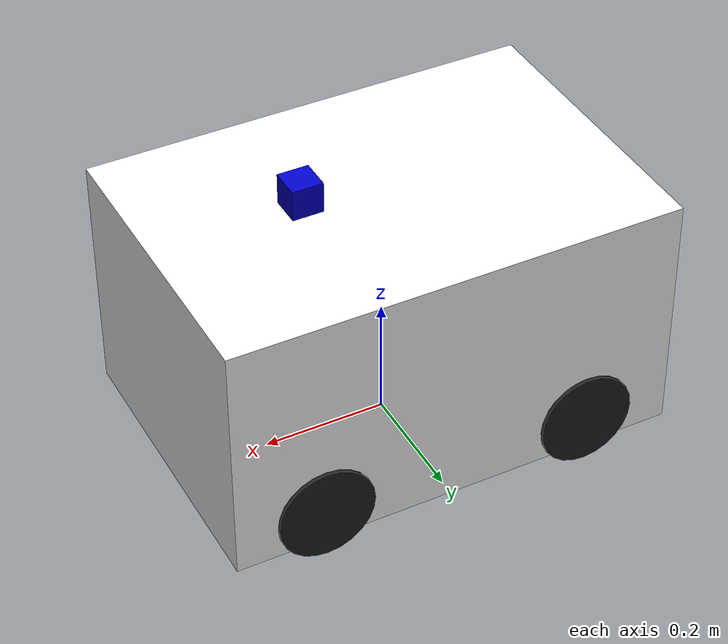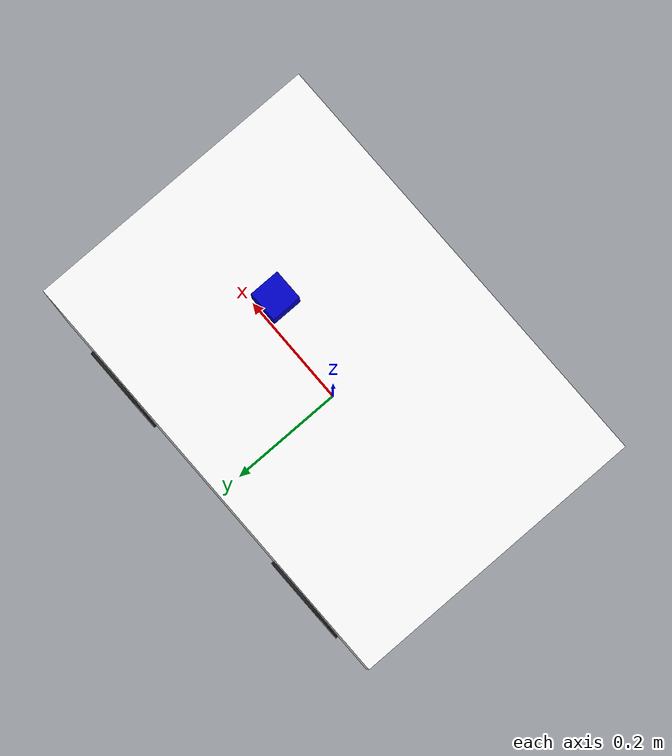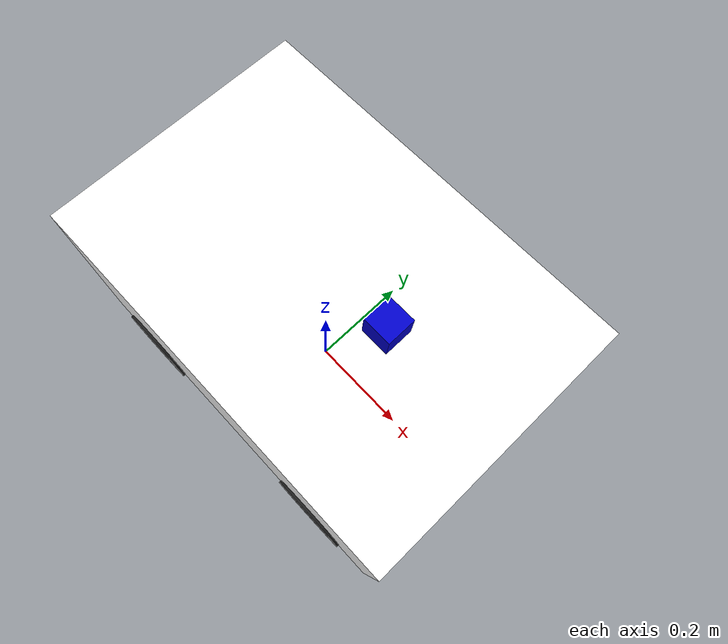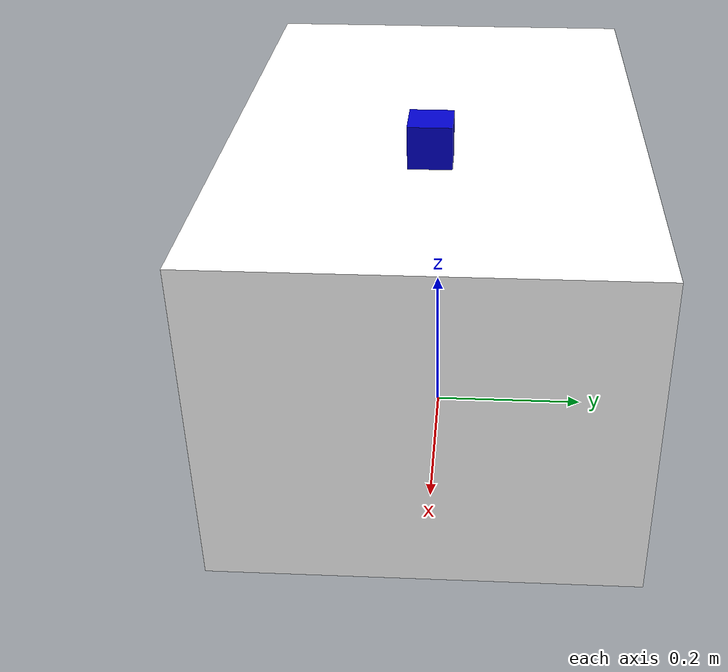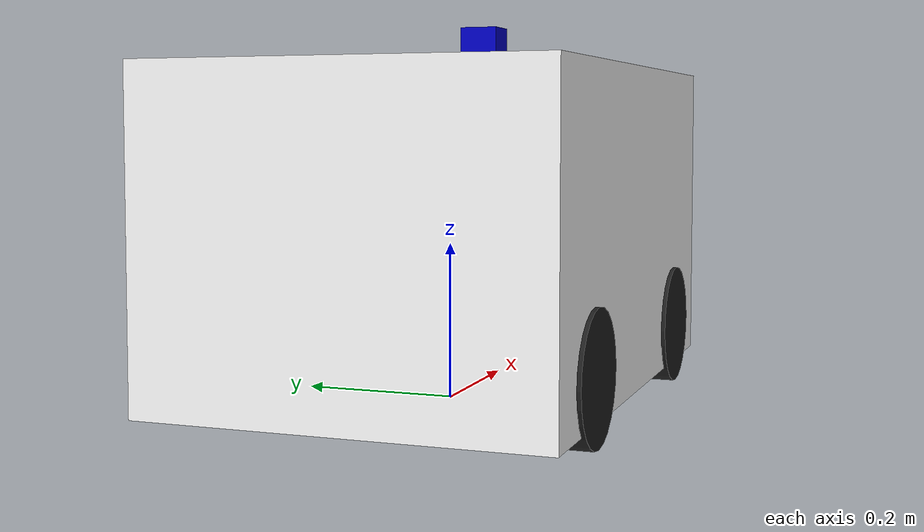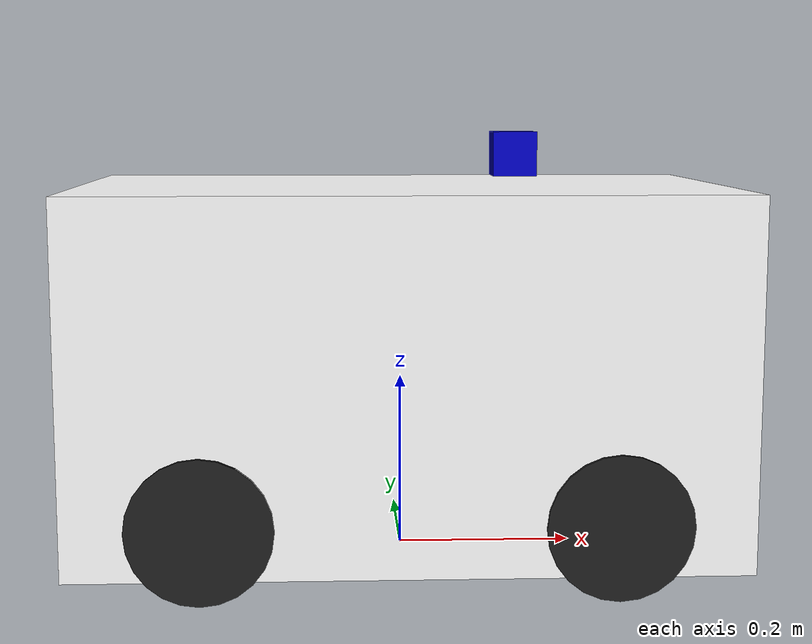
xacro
<?xml version="1.0"?>
<robot name="robot" xmlns:xacro="http://ros.org/wiki/xacro">

  <!-- Defining the colors used in this robot -->
  <material name="Black">
    <color rgba="0.0 0.0 0.0 1.0"/>
  </material>

  <material name="Red">
    <color rgba="0.8 0.0 0.0 1.0"/>
  </material>

  <material name="White">
    <color rgba="1.0 1.0 1.0 1.0"/>
  </material>

  <material name="Blue">
    <color rgba="0.0 0.0 0.8 1.0"/>
  </material>

  <!-- PROPERTY LIST -->
  <!--All units in m-kg-s-radians unit system -->
  <xacro:property name="M_PI" value="3.1415926535897931" />
  <xacro:property name="M_PI_2" value="1.570796327" />
  <xacro:property name="DEG_TO_RAD" value="0.017453293" />

  <!-- box -->
  <xacro:property name="box_size" value="0.05" />

  <!-- AGV Base -->
  <xacro:property name="agv_base_height" value="0.4" />
  <xacro:property name="agv_base_lift" value="0.025" />
  <xacro:property name="agv_base_width" value="0.495" />
  <xacro:property name="agv_base_length" value="0.73" />
  <xacro:property name="agv_base_mass" value="40" />
  <xacro:property name="agv_wheel_height" value="0.07825" />

  <!-- Macro for calculating inertia of cube -->
  <xacro:macro name="cuboid_inertia" params="m w d h">
    <inertia  ixx="${m*(h*h+d*d)/12}" ixy = "0" ixz = "0"
              iyy="${m*(w*w+d*d)/12}" iyz = "0"
              izz="${m*(w*w+h*h)/12}" />
  </xacro:macro>

  <!-- BASE-FOOTPRINT -->
  <!-- base_footprint is a fictitious link(frame) that is on the ground right below base_link origin -->
  <link name="base_footprint">
    <visual>
        <origin xyz="0 0 0" rpy="0 0 0" />
        <geometry>
            <box size="0.001 0.001 0.001" />
        </geometry>
    </visual>
  </link>

  <gazebo reference="base_footprint">
    <turnGravityOff>false</turnGravityOff>
  </gazebo>

  <!-- Wheel Macro -->
  <xacro:include filename="$(find ghost)/urdf/omni_wheel.urdf.xacro" />

  <!-- WHEELS -->
  <xacro:omni_wheel_250 name="wheel_front_left" parent="agv_base_link">
    <origin xyz="0.22 0.21 ${-agv_base_height/2-agv_base_lift + agv_wheel_height}" rpy="0 0 0" />
  </xacro:omni_wheel_250>
  <xacro:omni_wheel_250 name="wheel_front_right" parent="agv_base_link">
    <origin xyz="0.22 -0.21 ${-agv_base_height/2-agv_base_lift + agv_wheel_height}" rpy="0 0 0" />
  </xacro:omni_wheel_250>
  <xacro:omni_wheel_250 name="wheel_back_left" parent="agv_base_link">
    <origin xyz="-0.22 0.21 ${-agv_base_height/2-agv_base_lift + agv_wheel_height}" rpy="0 0 0" />
  </xacro:omni_wheel_250>
  <xacro:omni_wheel_250 name="wheel_back_right" parent="agv_base_link">
    <origin xyz="-0.22 -0.21 ${-agv_base_height/2-agv_base_lift + agv_wheel_height}" rpy="0 0 0" />
  </xacro:omni_wheel_250>

  <!-- AGV_BASE_LINK -->
  <joint name="base_footprint_agv_base_joint" type="fixed">
    <origin xyz="0 0 ${agv_base_height/2+agv_base_lift}" rpy="0 0 0" />
    <parent link="base_footprint"/>
    <child link="agv_base_link" />
  </joint>
  <link name="agv_base_link">
   <inertial>
     <mass value="${agv_base_mass}" />
     <origin xyz="0 0 ${-agv_base_height/2-agv_base_lift}" />
     <cuboid_inertia m="${agv_base_mass}" d="${agv_base_length}" w="${agv_base_width}" h="${agv_base_height}" />
   </inertial>
   <visual>
      <origin xyz="0 0 0" rpy="0 0 0" />
      <geometry>
        <box size="${agv_base_length} ${agv_base_width} ${agv_base_height}" />
      </geometry>
      <material name="White" />
    </visual>
    <collision>
      <origin xyz="0 0 0" rpy="0 0 0" />
      <geometry>
        <box size="${agv_base_length} ${agv_base_width} ${agv_base_height}" />
      </geometry>
    </collision>
  </link>

  <!-- AGV lidar -->
  <joint name="base_footprint_lidar_joint" type="fixed">
    <origin xyz="0.13 -0.0015 0.46" rpy="0 0 0" />
    <parent link="base_footprint"/>
    <child link="agv_lidar" />
  </joint>
  <link name="agv_lidar">
    <visual>
      <origin xyz="0 0 0" rpy="0 0 0" />
      <geometry>
        <box size="${box_size} ${box_size} ${box_size}"/>
      </geometry>
      <material name="Blue" />
    </visual>
  </link>

  <gazebo reference="agv_lidar">
    <material>Gazebo/Blue</material>
    <turnGravityOff>false</turnGravityOff>
    <sensor type="ray" name="agv_lidar1">
      <pose>${box_size/2} 0 0 0 0 0</pose>
      <visualize>false</visualize>
      <update_rate>60</update_rate>
      <ray>
        <scan>
          <horizontal>
            <samples>721</samples>
            <resolution>1</resolution>
            <min_angle>-${M_PI}</min_angle>
            <max_angle>${M_PI}</max_angle>
          </horizontal>
        </scan>
        <range>
          <min>0.10</min>
          <max>20.0</max>
          <resolution>0.001</resolution>
        </range>
      </ray>
      <plugin name="gazebo_ros_agv_lidar_controller" filename="libgazebo_ros_laser.so">
        <topicName>/scan</topicName>
        <frameName>agv_lidar</frameName>
      </plugin>
    </sensor>
  </gazebo>

  <gazebo>
    <plugin name="planar_move_controller" filename="libgazebo_ros_planar_move.so">
      <commandTopic>cmd_vel</commandTopic>
      <odometryFrame>odom</odometryFrame>
      <odometryTopic>odom</odometryTopic>
      <robotBaseFrame>base_footprint</robotBaseFrame>
      <odometryRate>60.0</odometryRate>
      <publishTF>true</publishTF>
    </plugin>
  </gazebo>

</robot>

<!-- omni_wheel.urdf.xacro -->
<robot xmlns:xacro="http://ros.org/wiki/xacro" name="mpo_500">

  <!-- Macro for calculating inertia of cylinder -->
  <xacro:macro name="cylinder_inertia" params="m r h">
    <inertia  ixx="${m*(3*r*r+h*h)/12}" ixy = "0" ixz = "0"
              iyy="${m*(3*r*r+h*h)/12}" iyz = "0"
              izz="${m*r*r/2}" />
  </xacro:macro>

  <xacro:macro name="omni_wheel_250" params="name parent *origin">
   <joint name="${name}_joint" type="fixed">
    <xacro:insert_block name="origin" />
    <axis xyz="0 1 0" />
    <joint_properties damping="0.0" friction="0.0" />
    <parent link="${parent}" />
    <child link="${name}_link" />
   </joint>

   <link name="${name}_link" type="wheel">
    <inertial>
      <mass value="2.1" />
      <origin xyz="0 0 0" rpy="0 0 0" />
      <cylinder_inertia m="2.1" r="0.07825" h="0.085"/>
    </inertial>

    <visual>
     <origin xyz="0 0 0" rpy="1.570796326 0 0" />
     <geometry>
        <cylinder radius="0.07825" length="0.085"/>
     </geometry>
     <material name="Neobotix/Black" />
    </visual>

    <collision>
     <origin xyz="0 0 0" rpy="1.570796326 0 0" />
     <geometry>
        <cylinder radius="0.07825" length="0.085"/>
     </geometry>
    </collision>
   </link>

    <gazebo reference="${name}_link">
        <gravity>true</gravity>
        <self_collide>false</self_collide>
        <material value="Gazebo/Black"/>
    </gazebo>

  </xacro:macro>

</robot>
